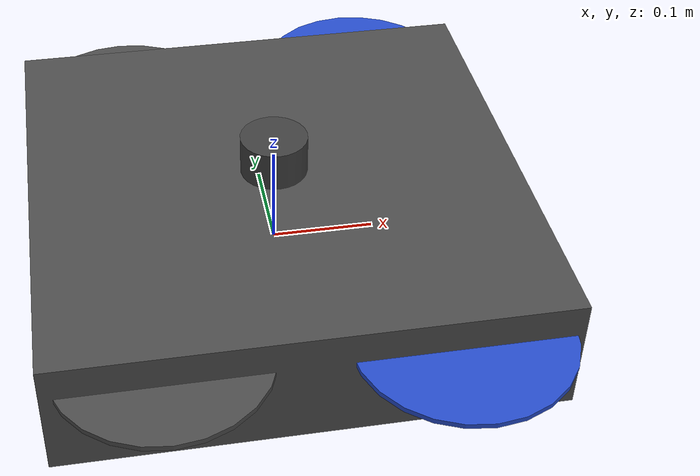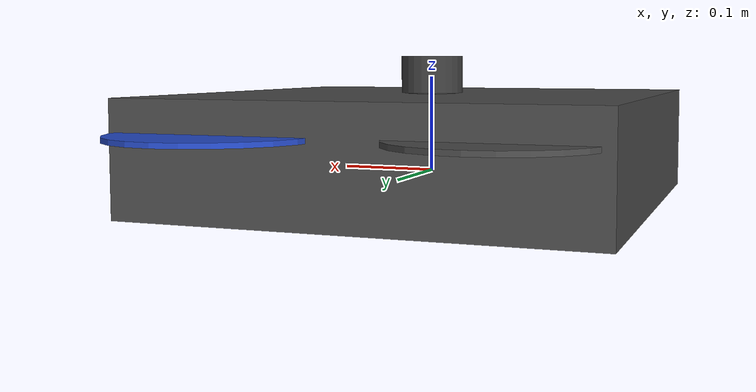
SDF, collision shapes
<?xml version='1.0'?>
<sdf version="1.6">
  <model name="iris_demo">
    <include>
      <uri>model://iris_quadcopter</uri>
    </include>

    <include>
      <uri>model://scanse_sweep</uri>
      <pose>0 0 0.06 0 0 0</pose>
    </include>

    <joint name="scanse_mount" type="fixed">
      <parent>iris::base_link</parent>
      <child>scanse_sweep::base</child>
    </joint>

    <!-- plugins -->
    <plugin name="rotor_0_blade_1" filename="libLiftDragPlugin.so">
      <a0>0.3</a0>
      <alpha_stall>1.4</alpha_stall>
      <cla>4.2500</cla>
      <cda>0.10</cda>
      <cma>0.00</cma>
      <cla_stall>-0.025</cla_stall>
      <cda_stall>0.0</cda_stall>
      <cma_stall>0.0</cma_stall>
      <area>0.002</area>
      <air_density>1.2041</air_density>
      <cp>0.084 0 0</cp>
      <forward>0 1 0</forward>
      <upward>0 0 1</upward>
      <link_name>iris::rotor_0</link_name>
    </plugin>
    <plugin name="rotor_0_blade_2" filename="libLiftDragPlugin.so">
      <a0>0.3</a0>
      <alpha_stall>1.4</alpha_stall>
      <cla>4.2500</cla>
      <cda>0.10</cda>
      <cma>0.00</cma>
      <cla_stall>-0.025</cla_stall>
      <cda_stall>0.0</cda_stall>
      <cma_stall>0.0</cma_stall>
      <area>0.002</area>
      <air_density>1.2041</air_density>
      <cp>-0.084 0 0</cp>
      <forward>0 -1 0</forward>
      <upward>0 0 1</upward>
      <link_name>iris::rotor_0</link_name>
    </plugin>

    <plugin name="rotor_1_blade_1" filename="libLiftDragPlugin.so">
      <a0>0.3</a0>
      <alpha_stall>1.4</alpha_stall>
      <cla>4.2500</cla>
      <cda>0.10</cda>
      <cma>0.00</cma>
      <cla_stall>-0.025</cla_stall>
      <cda_stall>0.0</cda_stall>
      <cma_stall>0.0</cma_stall>
      <area>0.002</area>
      <air_density>1.2041</air_density>
      <cp>0.084 0 0</cp>
      <forward>0 1 0</forward>
      <upward>0 0 1</upward>
      <link_name>iris::rotor_1</link_name>
    </plugin>
    <plugin name="rotor_1_blade_2" filename="libLiftDragPlugin.so">
      <a0>0.3</a0>
      <alpha_stall>1.4</alpha_stall>
      <cla>4.2500</cla>
      <cda>0.10</cda>
      <cma>0.00</cma>
      <cla_stall>-0.025</cla_stall>
      <cda_stall>0.0</cda_stall>
      <cma_stall>0.0</cma_stall>
      <area>0.002</area>
      <air_density>1.2041</air_density>
      <cp>-0.084 0 0</cp>
      <forward>0 -1 0</forward>
      <upward>0 0 1</upward>
      <link_name>iris::rotor_1</link_name>
    </plugin>

    <plugin name="rotor_2_blade_1" filename="libLiftDragPlugin.so">
      <a0>0.3</a0>
      <alpha_stall>1.4</alpha_stall>
      <cla>4.2500</cla>
      <cda>0.10</cda>
      <cma>0.00</cma>
      <cla_stall>-0.025</cla_stall>
      <cda_stall>0.0</cda_stall>
      <cma_stall>0.0</cma_stall>
      <area>0.002</area>
      <air_density>1.2041</air_density>
      <cp>0.084 0 0</cp>
      <forward>0 -1 0</forward>
      <upward>0 0 1</upward>
      <link_name>iris::rotor_2</link_name>
    </plugin>
    <plugin name="rotor_2_blade_2" filename="libLiftDragPlugin.so">
      <a0>0.3</a0>
      <alpha_stall>1.4</alpha_stall>
      <cla>4.2500</cla>
      <cda>0.10</cda>
      <cma>0.00</cma>
      <cla_stall>-0.025</cla_stall>
      <cda_stall>0.0</cda_stall>
      <cma_stall>0.0</cma_stall>
      <area>0.002</area>
      <air_density>1.2041</air_density>
      <cp>-0.084 0 0</cp>
      <forward>0 1 0</forward>
      <upward>0 0 1</upward>
      <link_name>iris::rotor_2</link_name>
    </plugin>

    <plugin name="rotor_3_blade_1" filename="libLiftDragPlugin.so">
      <a0>0.3</a0>
      <alpha_stall>1.4</alpha_stall>
      <cla>4.2500</cla>
      <cda>0.10</cda>
      <cma>0.00</cma>
      <cla_stall>-0.025</cla_stall>
      <cda_stall>0.0</cda_stall>
      <cma_stall>0.0</cma_stall>
      <area>0.002</area>
      <air_density>1.2041</air_density>
      <cp>0.084 0 0</cp>
      <forward>0 -1 0</forward>
      <upward>0 0 1</upward>
      <link_name>iris::rotor_3</link_name>
    </plugin>
    <plugin name="rotor_3_blade_2" filename="libLiftDragPlugin.so">
      <a0>0.3</a0>
      <alpha_stall>1.4</alpha_stall>
      <cla>4.2500</cla>
      <cda>0.10</cda>
      <cma>0.00</cma>
      <cla_stall>-0.025</cla_stall>
      <cda_stall>0.0</cda_stall>
      <cma_stall>0.0</cma_stall>
      <area>0.002</area>
      <air_density>1.2041</air_density>
      <cp>-0.084 0 0</cp>
      <forward>0 1 0</forward>
      <upward>0 0 1</upward>
      <link_name>iris::rotor_3</link_name>
    </plugin>
    <plugin name="arducopter_plugin" filename="libArduCopterPlugin.so">
      <fdm_addr>127.0.0.1</fdm_addr>
      <fdm_port_in>9002</fdm_port_in>
      <fdm_port_out>9003</fdm_port_out>
      <imuName>iris_demo::iris::iris/imu_link::imu_sensor</imuName>
      <connectionTimeoutMaxCount>5</connectionTimeoutMaxCount>
      <rotor id="0">
        <vel_p_gain>0.20</vel_p_gain>
        <vel_i_gain>0</vel_i_gain>
        <vel_d_gain>0</vel_d_gain>
        <vel_i_max>0</vel_i_max>
        <vel_i_min>0</vel_i_min>
        <vel_cmd_max>2.5</vel_cmd_max>
        <vel_cmd_min>-2.5</vel_cmd_min>
        <jointName>iris::rotor_0_joint</jointName>
        <turningDirection>ccw</turningDirection>
        <rotorVelocitySlowdownSim>1</rotorVelocitySlowdownSim>
      </rotor>
      <rotor id="1">
        <vel_p_gain>0.20</vel_p_gain>
        <vel_i_gain>0</vel_i_gain>
        <vel_d_gain>0</vel_d_gain>
        <vel_i_max>0</vel_i_max>
        <vel_i_min>0</vel_i_min>
        <vel_cmd_max>2.5</vel_cmd_max>
        <vel_cmd_min>-2.5</vel_cmd_min>
        <jointName>iris::rotor_1_joint</jointName>
        <turningDirection>ccw</turningDirection>
        <rotorVelocitySlowdownSim>1</rotorVelocitySlowdownSim>
      </rotor>
      <rotor id="2">
        <vel_p_gain>0.20</vel_p_gain>
        <vel_i_gain>0</vel_i_gain>
        <vel_d_gain>0</vel_d_gain>
        <vel_i_max>0</vel_i_max>
        <vel_i_min>0</vel_i_min>
        <vel_cmd_max>2.5</vel_cmd_max>
        <vel_cmd_min>-2.5</vel_cmd_min>
        <jointName>iris::rotor_2_joint</jointName>
        <turningDirection>cw</turningDirection>
        <rotorVelocitySlowdownSim>1</rotorVelocitySlowdownSim>
      </rotor>
      <rotor id="3">
        <vel_p_gain>0.20</vel_p_gain>
        <vel_i_gain>0</vel_i_gain>
        <vel_d_gain>0</vel_d_gain>
        <vel_i_max>0</vel_i_max>
        <vel_i_min>0</vel_i_min>
        <vel_cmd_max>2.5</vel_cmd_max>
        <vel_cmd_min>-2.5</vel_cmd_min>
        <jointName>iris::rotor_3_joint</jointName>
        <turningDirection>cw</turningDirection>
        <rotorVelocitySlowdownSim>1</rotorVelocitySlowdownSim>
      </rotor>
    </plugin>

  </model>
</sdf>

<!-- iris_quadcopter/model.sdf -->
<sdf version='1.6'>
  <model name='iris'>
    <pose>0 0 0.025 0 0 0</pose>
    <link name='base_link'>
      <velocity_decay>
        <linear>0.0</linear>
        <angular>0.0</angular>
      </velocity_decay>
      <inertial>
        <pose>0 0 0 0 0 0</pose>
        <mass>1.5</mass>
        <inertia>
          <ixx>0.008</ixx>
          <ixy>0</ixy>
          <ixz>0</ixz>
          <iyy>0.015</iyy>
          <iyz>0</iyz>
          <izz>0.017</izz>
        </inertia>
      </inertial>
      <collision name='base_link_collision'>
        <pose>0 0 0 0 0 0</pose>
        <geometry>
          <box>
            <size>0.47 0.47 0.115</size>
          </box>
        </geometry>
        <surface>
          <contact>
            <ode>
              <max_vel>100.0</max_vel>
              <min_depth>0.001</min_depth>
            </ode>
          </contact>
          <friction>
            <ode>
              <mu>1.0</mu>
              <mu2>1.0</mu2>
            </ode>
          </friction>
        </surface>
      </collision>
      <visual name='base_link_visual'>
        <geometry>
          <mesh>
            <uri>model://iris_quadcopter/meshes/iris.dae</uri>
          </mesh>
        </geometry>
        <material>
          <script>
            <name>Gazebo/DarkGrey</name>
          </script>
        </material>
      </visual>

    </link>
    <link name='iris/ground_truth/odometry_sensorgt_link'>
      <pose>0 0 0 0 -0 0</pose>
      <inertial>
        <pose>0 0 0 0 -0 0</pose>
        <mass>0.15</mass>
        <inertia>
          <ixx>0.0001</ixx>
          <ixy>0</ixy>
          <ixz>0</ixz>
          <iyy>0.0002</iyy>
          <iyz>0</iyz>
          <izz>0.0002</izz>
        </inertia>
      </inertial>
    </link>
    <joint name='iris/ground_truth/odometry_sensorgt_joint' type='revolute'>
      <child>iris/ground_truth/odometry_sensorgt_link</child>
      <parent>base_link</parent>
      <axis>
        <xyz>0 0 1</xyz>
        <limit>
          <lower>0</lower>
          <upper>0</upper>
          <effort>0</effort>
          <velocity>0</velocity>
        </limit>
        <dynamics>
          <damping>1.0</damping>
        </dynamics>
        <use_parent_model_frame>1</use_parent_model_frame>
      </axis>
      <physics>
        <ode>
          <implicit_spring_damper>1</implicit_spring_damper>
        </ode>
      </physics>
    </joint>
    <link name='iris/imu_link'>
      <inertial>
        <pose>0 0 0 0 0 0</pose>
        <mass>0.15</mass>
        <inertia>
          <ixx>0.00001</ixx>
          <ixy>0</ixy>
          <ixz>0</ixz>
          <iyy>0.00002</iyy>
          <iyz>0</iyz>
          <izz>0.00002</izz>
        </inertia>
      </inertial>
      <sensor name="imu_sensor" type="imu">
        <pose>0 0 0 3.141593 0 0</pose>
        <always_on>1</always_on>
        <update_rate>1000.0</update_rate>
      </sensor>
    </link>
    <joint name='iris/imu_joint' type='revolute'>
      <child>iris/imu_link</child>
      <parent>base_link</parent>
      <axis>
        <xyz>0 0 1</xyz>
        <limit>
          <lower>0</lower>
          <upper>0</upper>
          <effort>0</effort>
          <velocity>0</velocity>
        </limit>
        <dynamics>
          <damping>1.0</damping>
        </dynamics>
        <use_parent_model_frame>1</use_parent_model_frame>
      </axis>
      <physics>
        <ode>
          <implicit_spring_damper>1</implicit_spring_damper>
        </ode>
      </physics>
    </joint>
    <link name='rotor_0'>
      <pose>0.13 -0.22 0.023 0 -0 0</pose>
      <inertial>
        <pose>0 0 0 0 -0 0</pose>
        <mass>0.025</mass>
        <inertia>
          <ixx>9.75e-06</ixx>
          <ixy>0</ixy>
          <ixz>0</ixz>
          <iyy>0.000166704</iyy>
          <iyz>0</iyz>
          <izz>0.000167604</izz>
        </inertia>
      </inertial>
      <collision name='rotor_0_collision'>
        <pose>0 0 0 0 -0 0</pose>
        <geometry>
          <cylinder>
            <length>0.005</length>
            <radius>0.1</radius>
          </cylinder>
        </geometry>
        <surface>
          <contact>
            <ode/>
          </contact>
          <friction>
            <ode/>
          </friction>
        </surface>
      </collision>
      <visual name='rotor_0_visual'>
        <pose>0 0 0 0 -0 0</pose>
        <geometry>
          <mesh>
            <scale>1 1 1</scale>
            <uri>model://iris_quadcopter/meshes/iris_prop_ccw.dae</uri>
          </mesh>
        </geometry>
        <material>
          <script>
            <name>Gazebo/Blue</name>
            <uri>__default__</uri>
          </script>
        </material>
      </visual>
      <gravity>1</gravity>
      <velocity_decay/>
      <self_collide>0</self_collide>
    </link>
    <joint name='rotor_0_joint' type='revolute'>
      <child>rotor_0</child>
      <parent>base_link</parent>
      <axis>
        <xyz>0 0 1</xyz>
        <limit>
          <lower>-1e+16</lower>
          <upper>1e+16</upper>
        </limit>
        <dynamics>
          <damping>0.004</damping>
        </dynamics>
        <use_parent_model_frame>1</use_parent_model_frame>
      </axis>
      <physics>
        <ode>
          <implicit_spring_damper>1</implicit_spring_damper>
        </ode>
      </physics>
    </joint>
    <link name='rotor_1'>
      <pose>-0.13 0.2 0.023 0 -0 0</pose>
      <inertial>
        <pose>0 0 0 0 -0 0</pose>
        <mass>0.025</mass>
        <inertia>
          <ixx>9.75e-06</ixx>
          <ixy>0</ixy>
          <ixz>0</ixz>
          <iyy>0.000166704</iyy>
          <iyz>0</iyz>
          <izz>0.000167604</izz>
        </inertia>
      </inertial>
      <collision name='rotor_1_collision'>
        <pose>0 0 0 0 -0 0</pose>
        <geometry>
          <cylinder>
            <length>0.005</length>
            <radius>0.1</radius>
          </cylinder>
        </geometry>
        <surface>
          <contact>
            <ode/>
          </contact>
          <friction>
            <ode/>
          </friction>
        </surface>
      </collision>
      <visual name='rotor_1_visual'>
        <pose>0 0 0 0 -0 0</pose>
        <geometry>
          <mesh>
            <scale>1 1 1</scale>
            <uri>model://iris_quadcopter/meshes/iris_prop_ccw.dae</uri>
          </mesh>
        </geometry>
        <material>
          <script>
            <name>Gazebo/DarkGrey</name>
            <uri>__default__</uri>
          </script>
        </material>
      </visual>
      <gravity>1</gravity>
      <velocity_decay/>
      <self_collide>0</self_collide>
    </link>
    <joint name='rotor_1_joint' type='revolute'>
      <child>rotor_1</child>
      <parent>base_link</parent>
      <axis>
        <xyz>0 0 1</xyz>
        <limit>
          <lower>-1e+16</lower>
          <upper>1e+16</upper>
        </limit>
        <dynamics>
          <damping>0.004</damping>
        </dynamics>
        <use_parent_model_frame>1</use_parent_model_frame>
      </axis>
      <physics>
        <ode>
          <implicit_spring_damper>1</implicit_spring_damper>
        </ode>
      </physics>
    </joint>
    <link name='rotor_2'>
      <pose>0.13 0.22 0.023 0 -0 0</pose>
      <inertial>
        <pose>0 0 0 0 -0 0</pose>
        <mass>0.025</mass>
        <inertia>
          <ixx>9.75e-06</ixx>
          <ixy>0</ixy>
          <ixz>0</ixz>
          <iyy>0.000166704</iyy>
          <iyz>0</iyz>
          <izz>0.000167604</izz>
        </inertia>
      </inertial>
      <collision name='rotor_2_collision'>
        <pose>0 0 0 0 -0 0</pose>
        <geometry>
          <cylinder>
            <length>0.005</length>
            <radius>0.1</radius>
          </cylinder>
        </geometry>
        <surface>
          <contact>
            <ode/>
          </contact>
          <friction>
            <ode/>
          </friction>
        </surface>
      </collision>
      <visual name='rotor_2_visual'>
        <pose>0 0 0 0 -0 0</pose>
        <geometry>
          <mesh>
            <scale>1 1 1</scale>
            <uri>model://iris_quadcopter/meshes/iris_prop_cw.dae</uri>
          </mesh>
        </geometry>
        <material>
          <script>
            <name>Gazebo/Blue</name>
            <uri>__default__</uri>
          </script>
        </material>
      </visual>
      <gravity>1</gravity>
      <velocity_decay/>
      <self_collide>0</self_collide>
    </link>
    <joint name='rotor_2_joint' type='revolute'>
      <child>rotor_2</child>
      <parent>base_link</parent>
      <axis>
        <xyz>0 0 1</xyz>
        <limit>
          <lower>-1e+16</lower>
          <upper>1e+16</upper>
        </limit>
        <dynamics>
          <damping>0.004</damping>
        </dynamics>
        <use_parent_model_frame>1</use_parent_model_frame>
      </axis>
      <physics>
        <ode>
          <implicit_spring_damper>1</implicit_spring_damper>
        </ode>
      </physics>
    </joint>
    <link name='rotor_3'>
      <pose>-0.13 -0.2 0.023 0 -0 0</pose>
      <inertial>
        <pose>0 0 0 0 -0 0</pose>
        <mass>0.025</mass>
        <inertia>
          <ixx>9.75e-06</ixx>
          <ixy>0</ixy>
          <ixz>0</ixz>
          <iyy>0.000166704</iyy>
          <iyz>0</iyz>
          <izz>0.000167604</izz>
        </inertia>
      </inertial>
      <collision name='rotor_3_collision'>
        <pose>0 0 0 0 -0 0</pose>
        <geometry>
          <cylinder>
            <length>0.005</length>
            <radius>0.1</radius>
          </cylinder>
        </geometry>
        <surface>
          <contact>
            <ode/>
          </contact>
          <friction>
            <ode/>
          </friction>
        </surface>
      </collision>
      <visual name='rotor_3_visual'>
        <pose>0 0 0 0 -0 0</pose>
        <geometry>
          <mesh>
            <scale>1 1 1</scale>
            <uri>model://iris_quadcopter/meshes/iris_prop_cw.dae</uri>
          </mesh>
        </geometry>
        <material>
          <script>
            <name>Gazebo/DarkGrey</name>
            <uri>__default__</uri>
          </script>
        </material>
      </visual>
      <gravity>1</gravity>
      <velocity_decay/>
      <self_collide>0</self_collide>
    </link>
    <joint name='rotor_3_joint' type='revolute'>
      <child>rotor_3</child>
      <parent>base_link</parent>
      <axis>
        <xyz>0 0 1</xyz>
        <limit>
          <lower>-1e+16</lower>
          <upper>1e+16</upper>
        </limit>
        <dynamics>
          <damping>0.004</damping>
        </dynamics>
        <use_parent_model_frame>1</use_parent_model_frame>
      </axis>
      <physics>
        <ode>
          <implicit_spring_damper>1</implicit_spring_damper>
        </ode>
      </physics>
    </joint>
    <static>0</static>
  </model>
</sdf>

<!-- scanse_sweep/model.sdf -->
<sdf version="1.5">
    <!-- All values listed here are in meters or radians -->
    <!-- Scanse does not supply 3D meshes on their website,
         so the meshes and textures are loose approximations -->

    <model name="scanse_sweep">
        <plugin name="scanse_control" filename="libScanseCtrlPlugin.so" />

        <!-- Give the base link a unique name -->
        <link name="base">
            <!-- Make sure it sits on ground plane -->
            <pose>0 0 0.0117 0 0 0</pose>

            <inertial>
                <!-- Assume most of the mass is in the base. This is not
                     actually true, but gives a good enough approximation
                     and preserves the desired kinematics -->
                <mass>0.110</mass>
                <inertia>
                    <ixx>0.000022901</ixx>
                    <iyy>0.000022901</iyy>
                    <izz>0.000035764</izz>
                    <ixy>0</ixy>
                    <ixz>0</ixz>
                    <iyz>0</iyz>
                </inertia>
            </inertial>

            <collision name="base_collision">
                <geometry>
                    <cylinder>
                        <radius>.0255</radius>
                        <length>.0234</length>
                    </cylinder>
                </geometry>
            </collision>

            <!-- Visual is just a copy of the collision -->
            <visual name="base_visual">
                <geometry>
                    <cylinder>
                        <radius>.0255</radius>
                        <length>.0234</length>
                    </cylinder>
                </geometry>

                <!-- Dark gray, matte -->
                <material>
                    <ambient>0.25 0.25 0.25 1</ambient>
                    <diffuse>0.25 0.25 0.25 1</diffuse>
                    <specular>0 0 0 0</specular>
                    <emissive>0 0 0 0</emissive>
                </material>
            </visual>
        </link>

        <!-- Top Rotating Bit -->
        <link name="top">
            <!-- Make sure it sits on the base -->
            <pose>0 0 0.04265 0 0 0</pose>

            <inertial>
                <mass>0.010</mass>
                <inertia>
                    <ixx>0.000011798</ixx>
                    <iyy>0.000011798</iyy>
                    <izz>0.000021125</izz>
                    <ixy>0</ixy>
                    <ixz>0</ixz>
                    <iyz>0</iyz>
                </inertia>
            </inertial>

            <collision name="top_collision">
                <geometry>
                    <cylinder>
                        <radius>.0325</radius>
                        <length>.0385</length>
                    </cylinder>
                </geometry>
            </collision>

            <!-- Visual is just a copy of the collision -->
            <visual name="top_visual">
                <geometry>
                    <cylinder>
                        <radius>.0325</radius>
                        <length>.0385</length>
                    </cylinder>
                </geometry>

                <!-- Dark gray, matte -->
                <material>
                    <ambient>0.25 0.25 0.25 1</ambient>
                    <diffuse>0.25 0.25 0.25 1</diffuse>
                    <specular>0 0 0 0</specular>
                    <emissive>0 0 0 0</emissive>
                </material>
            </visual>

            <!-- This is purely aesthetic, but provides a reference for
                 the current direction of the LIDAR unit -->
            <visual name="sensor_visual">
                <pose>0.0275 0 0 0 1.5708 0</pose>

                <geometry>
                    <cylinder>
                        <radius>0.0127</radius>
                        <length>0.02</length>
                    </cylinder>
                </geometry>

                <material>
                    <ambient>0.25 0.25 0.25 1</ambient>
                    <diffuse>0.25 0.25 0.25 1</diffuse>
                    <specular>0.25 0.25 0.25 1</specular>
                    <emissive>0 0 0 0</emissive>
                </material>
            </visual>

            <!-- Add ray sensor -->
            <sensor type="ray" name="scanse_sensor">
                <!-- Set vertical location -->
                <pose>0 0 -0.00105 0 0 0</pose>
                <!-- plugin name="ScanseSensorPlugin" filename="libScanseSensorPlugin.so"/ -->
                <!-- Enable sensor visualization -->
                <visualize>false</visualize>
                <!-- Set update frequency of the sensor (500 Hz) -->
                <update_rate>500</update_rate>

                <ray>
                    <!-- Resolution is 1cm, so we assume the std_dev of
                        the noise is roughly 1mm -->
                    <noise>
                        <type>gaussian</type>
                        <mean>0.0</mean>
                        <stddev>0.001</stddev>
                    </noise>

                    <scan>
                        <horizontal>
                            <samples>1</samples>
                            <resolution>1</resolution>
                            <min_angle>0</min_angle>
                            <max_angle>0</max_angle>
                        </horizontal>

                        <!-- The Scanse Sweep has a vertical range of 5
                            degrees. We simulate this by taking multiple
                            data points over the range and averaging them. -->
                        <vertical>
                            <samples>5</samples>
                            <!-- Take average of samples over range -->
                            <resolution>5</resolution>
                            <!-- +/- 0.25 degrees -->
                            <min_angle>-0.00436</min_angle>
                            <max_angle>0.00436</max_angle>
                        </vertical>
                    </scan>

                    <range>
                        <!-- Minimum beam distance -->
                        <min>0.05</min>
                        <!-- Maximum beam distance -->
                        <max>40.0</max>
                        <!-- Linear beam resolution -->
                        <resolution>0.01</resolution>
                    </range>
                </ray>
            </sensor>
        </link>

        <!-- The top parts sits on the base and spins around the z-axis.
             Note that due to the small masses, when controlling this, your
             PID gain should be on the order of 0.0001 -->
        <joint type="revolute" name="scanse_joint">
            <pose>0 0 -0.01925 0 0 0</pose>
            <parent>base</parent>
            <child>top</child>

            <axis>
                <xyz>0 0 1</xyz>
                <limit>
                    <!-- Use a very large number to indicate
                         continuous revolution -->
                    <lower>-10000000000000000</lower>
                    <upper>10000000000000000</upper>
                </limit>
            </axis>
        </joint>

    </model>
</sdf>
